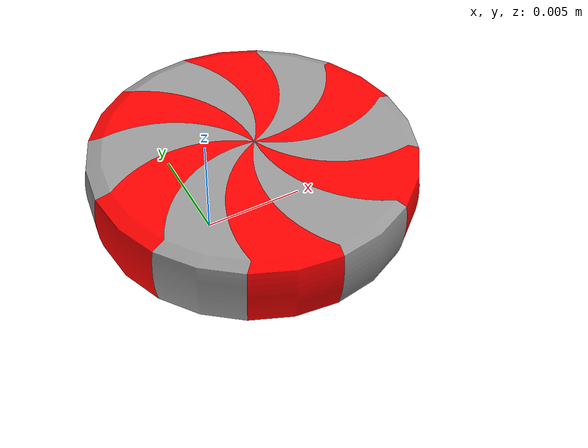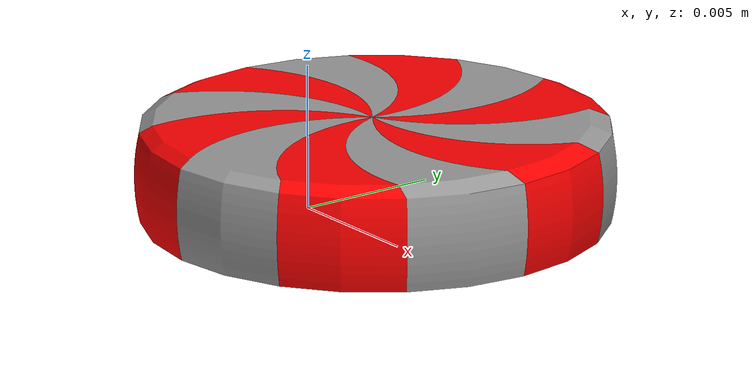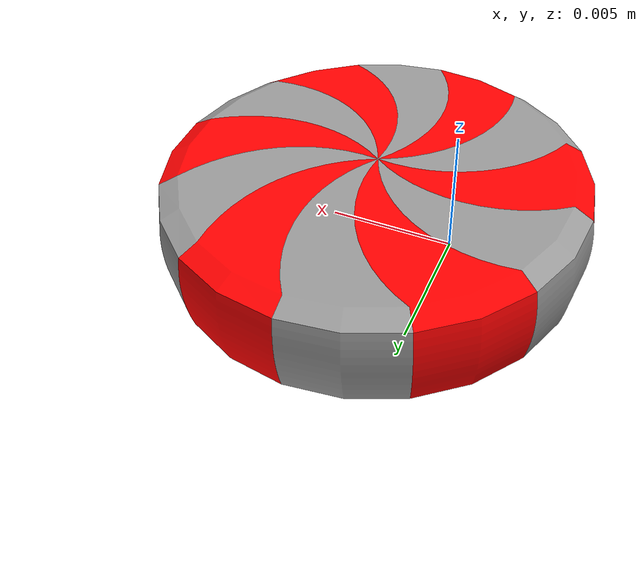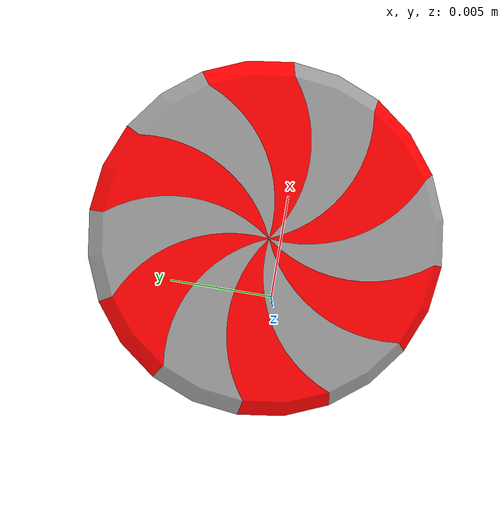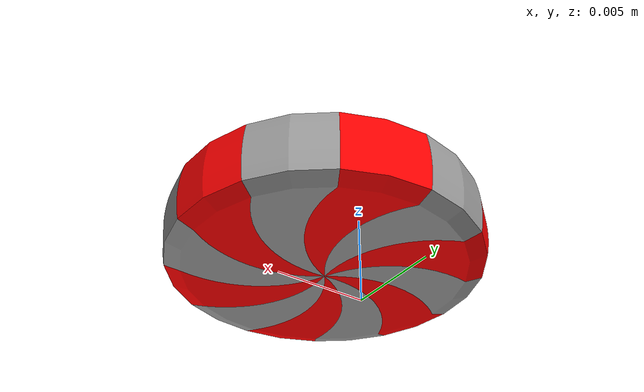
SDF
<?xml version='1.0'?>
<sdf version='1.6'>
  <model name='candy_red'>
    <link name='link_0'>
       <visual name='visual'>
        <pose frame=''>0 0 0 0 -0 0</pose>
        <geometry>
          <mesh>
            <uri>model://candy_purple/meshes/candy_white.dae</uri>
            <scale>1 1 1</scale>
          </mesh>
        </geometry>
        <material>
          <lighting>1</lighting>
          <script>
            <uri>file://media/materials/scripts/gazebo.material</uri>
            <name>Gazebo/Grey</name>
          </script>
          <ambient>1 1 1 1</ambient>
          <diffuse>1 1 1 1</diffuse>
          <specular>0.01 0.01 0.01 1</specular>
          <emissive>0 0 0 1</emissive>
          <shader type='vertex'>
            <normal_map>__default__</normal_map>
          </shader>
        </material>
        <cast_shadows>1</cast_shadows>
        <transparency>0</transparency>
      </visual>
      <collision name='collision'>
        <laser_retro>0</laser_retro>
        <max_contacts>10</max_contacts>
        <pose frame=''>0 0 0 0 -0 0</pose>
        <geometry>
          <mesh>
            <uri>model://candy_purple/meshes/candy_white.dae</uri>
            <scale>1 1 1</scale>
          </mesh>
        </geometry>
      </collision>
    </link>
    <link name='link_1'>
      <pose frame=''>0 0 0 0 -0 0</pose>
       <visual name='visual'>
        <pose frame=''>0 0 0 0 -0 0</pose>
        <geometry>
          <mesh>
            <uri>model://candy_purple/meshes/candy_color.dae</uri>
            <scale>1 1 1</scale>
          </mesh>
        </geometry>
        <material>
          <lighting>1</lighting>
          <script>
            <uri>file://media/materials/scripts/gazebo.material</uri>
            <name>Gazebo/Grey</name>
          </script>
          <ambient>1 0 0 1</ambient>
          <diffuse>1 0 0 1</diffuse>
          <specular>0.01 0.01 0.01 1</specular>
          <emissive>0 0 0 1</emissive>
          <shader type='vertex'>
            <normal_map>__default__</normal_map>
          </shader>
        </material>
        <cast_shadows>1</cast_shadows>
        <transparency>0</transparency>
      </visual>
      <collision name='collision'>
        <laser_retro>0</laser_retro>
        <max_contacts>10</max_contacts>
        <pose frame=''>0 0 0 0 -0 0</pose>
        <geometry>
          <mesh>
            <uri>model://candy_purple/meshes/candy_color.dae</uri>
            <scale>1 1 1</scale>
          </mesh>
        </geometry>
      </collision>
    </link>
    <static>1</static>
    <allow_auto_disable>1</allow_auto_disable>
  </model>
</sdf>
